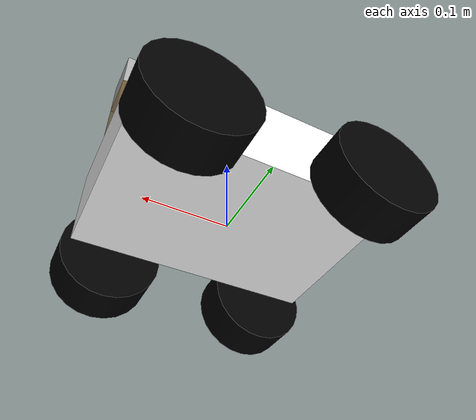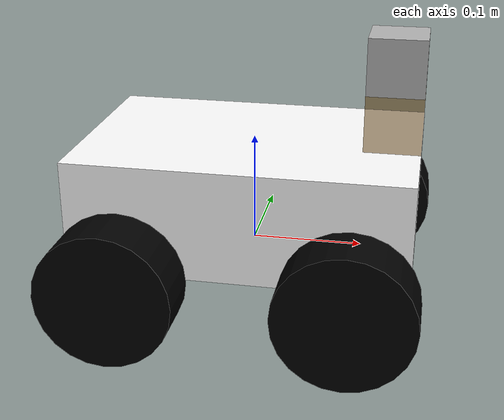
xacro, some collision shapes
<?xml version="1.0"?>

<robot name="smart_car" xmlns:xacro="http://www.ros.org/wiki/xacro">

  <!-- inertial 标签，标注了当前机器人某个刚体部分的惯性矩阵，用于一些力学相关的仿真计算 -->
  <xacro:macro name="default_inertial" params="mass">
    <inertial>
      <mass value="${mass}" />
      <inertia ixx="0.1" ixy="0.0" ixz="0.0" iyy="0.1" iyz="0.0" izz="0.1" />
    </inertial>
	</xacro:macro>

    <!-- 宏:黑色设置 -->
  <material name="black">
      <color rgba="0.0 0.0 0.0 0.8" />
  </material>

  <!-- 底盘属性 -->
  <xacro:property name="base_link_radius" value="0.1" /> <!-- base_link 半径 0.1-->
  <xacro:property name="base_link_length" value="0.08" /> <!-- base_link 长 0.08-->
  <xacro:property name="earth_space" value="0.015" />

  <!-- 轮子 -->
  <xacro:property name="length_wheel" value="0.05" />
	<xacro:property name="radius_wheel" value="0.06" />
  <xacro:property name="PI" value="3.1415926"/>

  <link name="base_footprint">
    <visual>
      <geometry>
          <box size="0.001 0.001 0.001"/>
      </geometry>
      <origin rpy="0 0 0" xyz="0 0 0"/>
    </visual>
    <xacro:default_inertial mass="0.0001"/>
 	</link>

	<gazebo reference="base_footprint">
		<material>Gazebo/Green</material>
		<turnGravityOff>false</turnGravityOff>
	</gazebo>

  <link name="base_link">
    <visual>
      <geometry>
          <box size="0.2 0.3 0.1"/>
      </geometry>
      <origin rpy="0 0 ${PI/2}" xyz="0 0 0.05"/>
      <material name="white">
        <color rgba="1 1 1 1" />
      </material>
    </visual>
    <collision>
      <geometry>
        <box size="0.2 0.3 0.1"/>
      </geometry>
    </collision>
    <xacro:default_inertial mass="8.2"/>
  </link>

  <joint name="base_footprint_joint" type="fixed">
    <origin xyz="0 0 0" />
    <parent link="base_footprint" />
    <child link="base_link" />
  </joint>

  <!-- 轮子 宏 -->
  <xacro:macro name="add_wheels" params="name flag1 flag2">
    <link name="wheel_${name}">
      <visual>
        <geometry>
          <cylinder length="${length_wheel}" radius="${radius_wheel}"/>
        </geometry>
        <origin rpy="0 0 0" xyz="0 0 0"/>
        <material name="black">
          <color rgba="0 0 0 1" />
        </material>
      </visual>
      <collision>
        <geometry>
          <cylinder length="${length_wheel}" radius="${radius_wheel}"/>
        </geometry>
      </collision>
      <mu1>0.5</mu1>
		  <mu2>0.5</mu2>
      <xacro:default_inertial mass="0.5"/>
    </link>

    <joint name="base_link2wheel_${name}" type="continuous">
      <parent link="base_link" />
      <child link="wheel_${name}" />
      <origin rpy="${-PI/2} 0 0" xyz="${flag1*0.1} ${flag2*0.13} 0"/>
      <axis xyz="0 0 1" />
    </joint>

  </xacro:macro>

  <!-- 调用 -->
  <xacro:add_wheels name="1" flag1="1" flag2="1" />
  <xacro:add_wheels name="2" flag1="-1" flag2="1" />
  <xacro:add_wheels name="3" flag1="1" flag2="-1" />
  <xacro:add_wheels name="4" flag1="-1" flag2="-1" />

  <!-- gazebo插件设置相关 -->

  <gazebo reference="base_link">
    <material>Gazebo/Orange</material>
  </gazebo>

  <gazebo reference="wheel_1">
    <material>Gazebo/Red</material>
  </gazebo>

  <gazebo reference="wheel_2">
    <material>Gazebo/Black</material>
  </gazebo>

  <gazebo reference="wheel_3">
    <material>Gazebo/Red</material>
  </gazebo>

  <gazebo reference="wheel_4">
    <material>Gazebo/Black</material>
  </gazebo>

  <!-- IMU -->
  <link name="imu_link">
    <visual>
      <origin xyz="0 0 0" rpy="0 0 0"/>
      <geometry>
        <box size="0.05 0.05 0.05"/>
      </geometry>
      <material name="yellow">
        <color rgba="0.5 0.3 0.0 0.5"/>
      </material>
    </visual>
    <collision>
      <origin xyz="0 0 0" rpy="0 0 0"/>
      <geometry>
      <box size="0.05 0.05 0.05"/>
      </geometry>
    </collision>
    <inertial>
      <mass value="1e-2" />
      <origin xyz="0 0 0" rpy="0 0 0"/>
      <inertia ixx="1e-6" ixy="0" ixz="0" iyy="1e-6" iyz="0" izz="1e-6" />
    </inertial>
  </link>

  <!-- IMU joint -->
  <joint name="imu_joint" type="fixed">
    <axis xyz="0 1 0" />
    <origin xyz="0.125 0 0.125" rpy="0 0 0"/>
    <parent link="base_link"/>
    <child link="imu_link"/>
  </joint>

  <!-- Hokuyo Laser -->
  <link name="laser_frame">
    <visual>
      <origin xyz="0 0 0" rpy="0 0 0"/>
      <geometry>
        <mesh filename="package://gazebo_pkg/meshes/hokuyo.dae"/>
      </geometry>
    </visual>
    <collision>
      <origin xyz="0 0 0" rpy="0 0 0"/>
      <geometry>
	      <box size="0.05 0.05 0.05"/>
      </geometry>
    </collision>
    <inertial>
      <mass value="1e-2" />
      <origin xyz="0 0 0" rpy="0 0 0"/>
      <inertia ixx="1e-6" ixy="0" ixz="0" iyy="1e-6" iyz="0" izz="1e-6" />
    </inertial>
  </link>

  <!-- Hokuyo joint -->
  <joint name="hokuyo_joint" type="fixed">
    <origin xyz="0.125 0.0 0.175" rpy="0 0 0"/>
    <parent link="base_link"/>
    <axis xyz="0 1 0" />
    <child link="laser_frame"/>
  </joint>

  <!-- Drive controller -->
  <gazebo>
    <plugin name="skid_steer_drive_controller" filename="libgazebo_ros_skid_steer_drive.so">
      <alwaysOn>true</alwaysOn>
      <updateRate>100.0</updateRate>
      <robotNamespace>/</robotNamespace>
      <leftFrontJoint>base_link2wheel_1</leftFrontJoint>
      <rightFrontJoint>base_link2wheel_3</rightFrontJoint>
      <leftRearJoint>base_link2wheel_2</leftRearJoint>
      <rightRearJoint>base_link2wheel_4</rightRearJoint>
      <wheelSeparation>0.26</wheelSeparation>
      <wheelDiameter>0.12</wheelDiameter>
      <torque>2</torque>
      <commandTopic>cmd_vel</commandTopic>
      <odometryTopic>odom</odometryTopic>
      <odometryFrame>odom</odometryFrame>
      <robotBaseFrame>base_footprint</robotBaseFrame>
      <broadcastTF>1</broadcastTF>
    </plugin>
  </gazebo>

  <!-- imu控制 -->
  <gazebo reference="imu_link">
    <material>Gazebo/Orange</material>
    <gravity>true</gravity>
    <sensor name="imu_sensor" type="imu">
        <always_on>true</always_on>
        <update_rate>100</update_rate>
        <visualize>true</visualize>
        <topic>__default_topic__</topic>
        <plugin filename="libgazebo_ros_imu_sensor.so" name="imu_plugin">
            <topicName>imu</topicName>
            <bodyName>imu_link</bodyName>
            <updateRateHZ>100.0</updateRateHZ>
            <gaussianNoise>0.0</gaussianNoise>
            <xyzOffset>0 0 0</xyzOffset>
            <rpyOffset>0 0 0</rpyOffset>
            <frameName>imu_link</frameName>
        </plugin>
        <pose>0 0 0 0 0 0</pose>
    </sensor>
  </gazebo>

  <!-- 雷达 -->
  <gazebo reference="laser_frame">
    <sensor type="ray" name="head_hokuyo_sensor">
      <pose>0 0 0 0 0 0</pose>
      <visualize>false</visualize>
      <update_rate>15</update_rate>
      <ray>
        <scan>
          <horizontal>
            <samples>720</samples>
            <resolution>1</resolution>
            <min_angle>-3.1415926</min_angle>
            <max_angle>3.1415926</max_angle>
          </horizontal>
        </scan>
        <range>
          <min>0.05</min>
          <max>30.0</max>
          <resolution>0.01</resolution>
        </range>
        <noise>
          <type>gaussian</type>
          <mean>0.0</mean>
          <stddev>0.01</stddev>
        </noise>
      </ray>
      <plugin name="gazebo_ros_head_hokuyo_controller" filename="libgazebo_ros_laser.so">
        <topicName>/scan</topicName>
        <frameName>laser_frame</frameName>
      </plugin>
    </sensor>
  </gazebo>

</robot>
